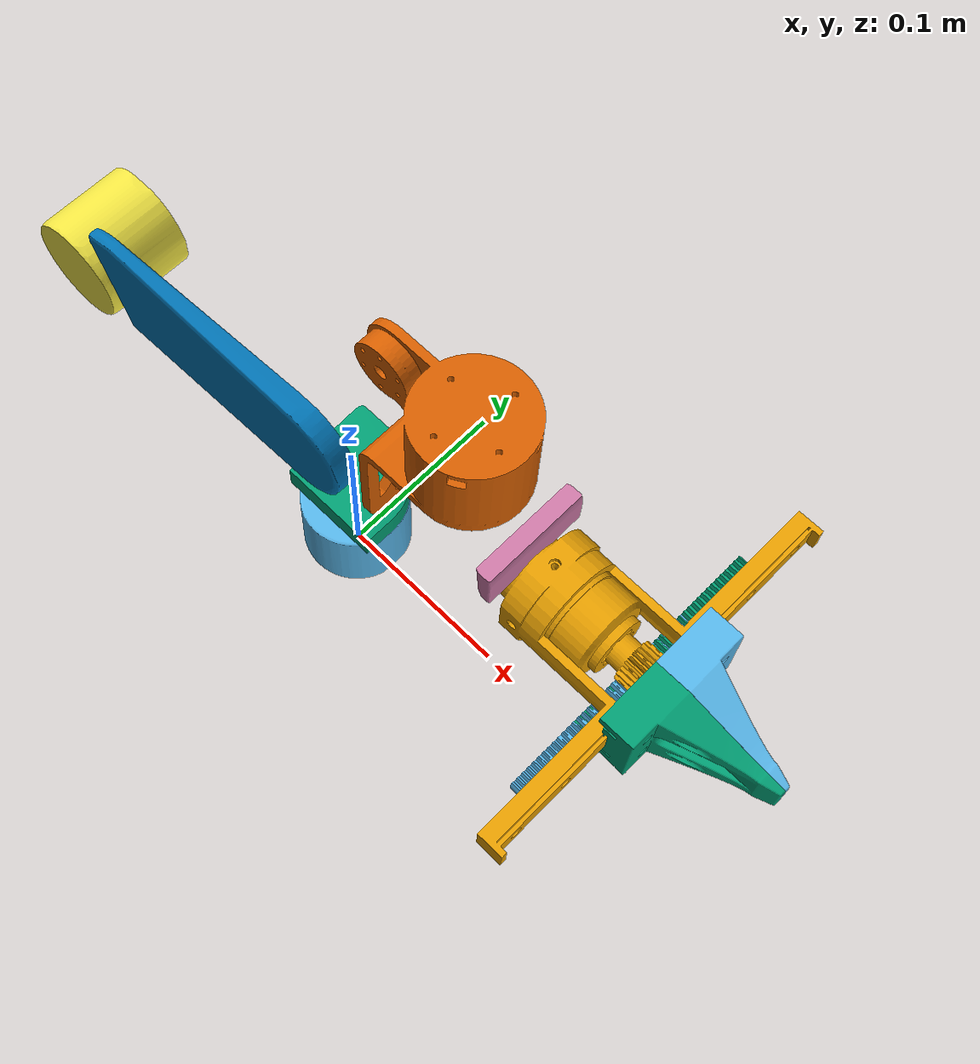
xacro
<?xml version="1.0"?>
<robot xmlns:xacro="http://www.ros.org/wiki/xacro" name="Panthera">
  <xacro:arg name="ros2_control_hardware_type" default="mock_components" />

  <link name="world"/>

  <joint name="world_fixed" type="fixed">
    <parent link="world"/>
    <child link="base_link"/>
  </joint>

  <xacro:arg name="type" default="empty"/>

  <xacro:include filename="$(find panthera_description)/xacro/panthera.xacro"/>
  <xacro:panthera name=""/>

  <xacro:if value="${'$(arg type)' == 'd405'}">
    <xacro:include filename="$(find panthera_description)/xacro/d405.xacro"/>
    <xacro:d405 name=""/>
  </xacro:if>

  <!-- Import Panthera ros2_control description -->
  <xacro:include filename="$(find panthera_description)/xacro/ros2_control/panthera.ros2_control.xacro" />

  <xacro:panthera_system name="PantheraSystem" ros2_control_hardware_type="$(arg ros2_control_hardware_type)"/>

  <xacro:arg name="gazebo" default="false" />
  <xacro:if value="$(arg gazebo)">
    <gazebo>
      <plugin filename="gz_ros2_control-system" name="gz_ros2_control::GazeboSimROS2ControlPlugin">
        <parameters>$(find panthera_description)/config/ros2_control/ros2_controllers.yaml</parameters>
      </plugin>
    </gazebo>
  </xacro:if>
</robot>

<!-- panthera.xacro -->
<robot xmlns:xacro="http://www.ros.org/wiki/xacro">
  <xacro:macro name="panthera" params="name">
    <xacro:property name="prefix" value="${name + '_' if name else ''}"/>

    <link name="${prefix}base_link">
      <inertial>
        <origin xyz="-5.22421768267327E-17 -4.9646319201852E-06 0.00682594884114425"/>
        <mass value="1.00980967249859"/>
        <inertia
            ixx="0.00110668630953746"
            ixy="1.28862263174568E-19"
            ixz="-3.2127004428854E-21"
            iyy="0.0011065522944672"
            iyz="-8.45296879697751E-08"
            izz="0.00216887903845609"/>
      </inertial>
      <visual>
        <geometry>
          <mesh filename="file://$(find panthera_description)/meshes/visual/base_link.obj"/>
        </geometry>
      </visual>
      <collision>
        <geometry>
          <mesh filename="file://$(find panthera_description)/meshes/collision/base_link_0.obj"/>
        </geometry>
      </collision>
      <collision>
        <geometry>
          <mesh filename="file://$(find panthera_description)/meshes/collision/base_link_1.obj"/>
        </geometry>
      </collision>
    </link>

    <link name="${prefix}link1">
      <inertial>
        <origin xyz="-0.000140138460727448 -0.0115178455380478 -0.0189175974816606"/>
        <mass value="0.433540348958132"/>
        <inertia
            ixx="0.000278935703826545"
            ixy="1.25625050632852E-06"
            ixz="6.95888805367088E-08"
            iyy="0.000266771663216221"
            iyz="6.1414956964764E-05"
            izz="0.000227700191108933"/>
      </inertial>
      <visual>
        <geometry>
          <mesh filename="file://$(find panthera_description)/meshes/visual/link1.obj"/>
        </geometry>
      </visual>
      <collision>
        <geometry>
          <mesh filename="file://$(find panthera_description)/meshes/collision/link1_0.obj"/>
        </geometry>
      </collision>
      <collision>
        <geometry>
          <mesh filename="file://$(find panthera_description)/meshes/collision/link1_1.obj"/>
        </geometry>
      </collision>
      <collision>
        <geometry>
          <mesh filename="file://$(find panthera_description)/meshes/collision/link1_2.obj"/>
        </geometry>
      </collision>
    </link>

    <joint name="${prefix}joint1" type="revolute">
      <origin xyz="0 0 0.1005"/>
      <parent link="${prefix}base_link"/>
      <child link="${prefix}link1"/>
      <axis xyz="0 0 1"/>
      <limit lower="-3.14" upper="3.14" effort="30" velocity="1"/>
    </joint>

    <link name="${prefix}link2">
      <inertial>
        <origin xyz="0.106425438295557 -3.80251385934116E-12 0.0236077558477278"/>
        <mass value="0.618785138060723"/>
        <inertia
            ixx="0.000203520214080601"
            ixy="2.79264055058398E-19"
            ixz="-1.05315902249166E-07"
            iyy="0.00224499671569178"
            iyz="1.32814298453241E-20"
            izz="0.00238696841123224"/>
      </inertial>
      <visual>
        <geometry>
          <mesh filename="file://$(find panthera_description)/meshes/visual/link2.obj"/>
        </geometry>
      </visual>
      <collision>
        <geometry>
          <mesh filename="file://$(find panthera_description)/meshes/collision/link2_0.obj"/>
        </geometry>
      </collision>
      <collision>
        <geometry>
          <mesh filename="file://$(find panthera_description)/meshes/collision/link2_1.obj"/>
        </geometry>
      </collision>
    </link>

    <joint name="${prefix}joint2" type="revolute">
      <origin xyz="0 0 0" rpy="1.5707963267949 0 3.14159265358979"/>
      <parent link="${prefix}link1"/>
      <child link="${prefix}link2"/>
      <axis xyz="0 0 1"/>
      <limit lower="-3.14" upper="3.14" effort="30" velocity="1"/>
    </joint>

    <link name="${prefix}link3">
      <inertial>
        <origin xyz="0.112947841031452 0.0109257169593898 0.0234930652223882"/>
        <mass value="0.578438290721478"/>
        <inertia
            ixx="0.000268057561475191"
            ixy="2.74601930728987E-05"
            ixz="3.17939972597626E-08"
            iyy="0.00216726923713696"
            iyz="1.00402096614883E-07"
            izz="0.0023748322005515"/>
      </inertial>
      <visual>
        <geometry>
          <mesh filename="file://$(find panthera_description)/meshes/visual/link3.obj"/>
        </geometry>
      </visual>
      <collision>
        <geometry>
          <mesh filename="file://$(find panthera_description)/meshes/collision/link3_0.obj"/>
        </geometry>
      </collision>
      <collision>
        <geometry>
          <mesh filename="file://$(find panthera_description)/meshes/collision/link3_1.obj"/>
        </geometry>
      </collision>
      <collision>
        <geometry>
          <mesh filename="file://$(find panthera_description)/meshes/collision/link3_2.obj"/>
        </geometry>
      </collision>
    </link>

    <joint name="${prefix}joint3" type="revolute">
      <origin xyz="0.179999999999998 0 0" rpy="3.14159265358979 0 2.83491633418811"/>
      <parent link="${prefix}link2"/>
      <child link="${prefix}link3"/>
      <axis xyz="0 0 1"/>
      <limit lower="-3.14" upper="3.14" effort="30" velocity="1"/>
    </joint>

    <link name="${prefix}link4">
      <inertial>
        <origin xyz="0.0513406245602283 -0.0329058384127011 0.00868209734629183"/>
        <mass value="0.399529174718196"/>
        <inertia
            ixx="0.000329818055330246"
            ixy="0.000104110882896881"
            ixz="8.09376058698959E-05"
            iyy="0.0003603735383472"
            iyz="-6.00949681992951E-05"
            izz="0.000376825850928194"/>
      </inertial>
      <visual>
        <geometry>
          <mesh filename="file://$(find panthera_description)/meshes/visual/link4.obj"/>
        </geometry>
      </visual>
      <collision>
        <geometry>
          <mesh filename="file://$(find panthera_description)/meshes/collision/link4_0.obj"/>
        </geometry>
      </collision>
      <collision>
        <geometry>
          <mesh filename="file://$(find panthera_description)/meshes/collision/link4_1.obj"/>
        </geometry>
      </collision>
      <collision>
        <geometry>
          <mesh filename="file://$(find panthera_description)/meshes/collision/link4_2.obj"/>
        </geometry>
      </collision>
      <collision>
        <geometry>
          <mesh filename="file://$(find panthera_description)/meshes/collision/link4_3.obj"/>
        </geometry>
      </collision>
    </link>

    <joint name="${prefix}joint4" type="revolute">
      <origin xyz="0.188809427730714 0 0" rpy="3.14159265358979 0 -0.306676319401685"/>
      <parent link="${prefix}link3"/>
      <child link="${prefix}link4"/>
      <axis xyz="0 0 1"/>
      <limit lower="-3.14" upper="3.14" effort="30" velocity="1"/>
    </joint>

    <link name="${prefix}link5">
      <inertial>
        <origin xyz="2.62314297356869E-16 -0.0160776069634142 -0.0180581657290753"/>
        <mass value="0.321861622200536"/>
        <inertia
            ixx="0.000192352594219116"
            ixy="-9.24994896376521E-20"
            ixz="2.36149112675264E-21"
            iyy="0.000171651346378433"
            iyz="4.05707603604006E-05"
            izz="0.000185377128431133"/>
      </inertial>
      <visual>
        <geometry>
          <mesh filename="file://$(find panthera_description)/meshes/visual/link5.obj"/>
        </geometry>
      </visual>
      <collision>
        <geometry>
          <mesh filename="file://$(find panthera_description)/meshes/collision/link5_0.obj"/>
        </geometry>
      </collision>
      <collision>
        <geometry>
          <mesh filename="file://$(find panthera_description)/meshes/collision/link5_1.obj"/>
        </geometry>
      </collision>
      <collision>
        <geometry>
          <mesh filename="file://$(find panthera_description)/meshes/collision/link5_2.obj"/>
        </geometry>
      </collision>
    </link>

    <joint name="${prefix}joint5" type="revolute">
      <origin xyz="0.08 0 0" rpy="-1.5708 1.5708 0"/>
      <parent link="${prefix}link4"/>
      <child link="${prefix}link5"/>
      <axis xyz="0 0 1"/>
      <limit lower="-3.14" upper="3.14" effort="30" velocity="1"/>
    </joint>

    <link name="${prefix}link6">
      <inertial>
        <origin xyz="-4.35824622879912E-15 -2.3037127760972E-15 -0.0025000000000041"/>
        <mass value="0.00434717883440458"/>
        <inertia
            ixx="3.56917077685088E-07"
            ixy="1.21411373112006E-21"
            ixz="-8.99654936865443E-22"
            iyy="3.56917077685087E-07"
            iyz="2.51615306815575E-22"
            izz="6.95720910226822E-07"/>
      </inertial>
      <visual>
        <geometry>
          <mesh filename="file://$(find panthera_description)/meshes/visual/link6.obj"/>
        </geometry>
      </visual>
    </link>

    <joint name="${prefix}joint6" type="revolute">
      <origin xyz="0 -0.036 0" rpy="1.5708 0 0"/>
      <parent link="${prefix}link5"/>
      <child link="${prefix}link6"/>
      <axis xyz="0 0 1"/>
      <limit lower="-3.14" upper="3.14" effort="30" velocity="1"/>
    </joint>

    <link name="${prefix}gripper_center">
      <inertial>
        <origin xyz="-0.107107907434468 -0.000284330630565321 -3.59780083918573E-09"/>
        <mass value="0.105344961426715"/>
        <inertia
            ixx="0.000121501833753841"
            ixy="-5.32591777920033E-07"
            ixz="-1.30991455486E-12"
            iyy="0.000131132833025858"
            iyz="-1.22715670298721E-16"
            izz="3.14014892995729E-05"/>
      </inertial>
      <visual>
        <geometry>
          <mesh filename="file://$(find panthera_description)/meshes/visual/gripper_center_link.obj"/>
        </geometry>
      </visual>
      <collision>
        <geometry>
          <mesh filename="file://$(find panthera_description)/meshes/collision/gripper_center_0.obj"/>
        </geometry>
      </collision>
      <collision>
        <geometry>
          <mesh filename="file://$(find panthera_description)/meshes/collision/gripper_center_1.obj"/>
        </geometry>
      </collision>
      <collision>
        <geometry>
          <mesh filename="file://$(find panthera_description)/meshes/collision/gripper_center_2.obj"/>
        </geometry>
      </collision>
    </link>

    <joint name="${prefix}gripper_center_joint" type="fixed">
      <origin xyz="0 0 0.148" rpy="0 -1.5708 1.5708"/>
      <parent link="${prefix}link6"/>
      <child link="${prefix}gripper_center"/>
      <limit lower="-3.14" upper="3.14" effort="30" velocity="1"/>
    </joint>

    <link name="${prefix}gripper_1_link">
      <inertial>
        <origin xyz="-0.0574118738630709 0.00266477929541095 0.00735600840817693"/>
        <mass value="0.0426889603072748"/>
        <inertia
            ixx="1.52455723699562E-05"
            ixy="6.72945744056607E-07"
            ixz="6.51636208168844E-07"
            iyy="1.58145426336727E-05"
            iyz="8.66924269315344E-07"
            izz="1.07532838710952E-05"/>
      </inertial>
      <visual>
        <geometry>
          <mesh filename="file://$(find panthera_description)/meshes/visual/gripper_pad.obj"/>
        </geometry>
      </visual>
      <collision>
        <geometry>
          <mesh filename="file://$(find panthera_description)/meshes/collision/gripper_pad.obj"/>
        </geometry>
      </collision>
    </link>

    <joint name="${prefix}gripper_joint" type="prismatic">
      <parent link="${prefix}gripper_center"/>
      <child link="${prefix}gripper_1_link"/>
      <axis xyz="0 1 0"/>
      <limit lower="0" upper="0.06" effort="0.18" velocity="1"/>
    </joint>

    <link name="${prefix}gripper_2_link">
      <inertial>
        <origin xyz="-0.0573873207529981 -0.00294326456557495 -0.00756965143896882"/>
        <mass value="0.0427537416759649"/>
        <inertia
            ixx="1.51969338433752E-05"
            ixy="-6.97375756939916E-07"
            ixz="-6.45626526757555E-07"
            iyy="1.56092033290293E-05"
            iyz="8.99148024231464E-07"
            izz="1.09238615980533E-05"/>
      </inertial>
      <visual>
        <geometry>
          <mesh filename="file://$(find panthera_description)/meshes/visual/gripper_pad.obj" scale="1 -1 1"/>
        </geometry>
      </visual>
      <collision>
        <geometry>
          <mesh filename="file://$(find panthera_description)/meshes/collision/gripper_pad.obj" scale="1 -1 1"/>
        </geometry>
      </collision>
    </link>

    <joint name="${prefix}gripper_2_joint" type="prismatic">
      <parent link="${prefix}gripper_center"/>
      <child link="${prefix}gripper_2_link"/>
      <axis xyz="0 -1 0"/>
      <limit lower="0" upper="0.06" effort="0.18" velocity="1"/>
      <mimic joint="${prefix}gripper_joint" multiplier="1" offset="0"/>
    </joint>

  </xacro:macro>

</robot>
